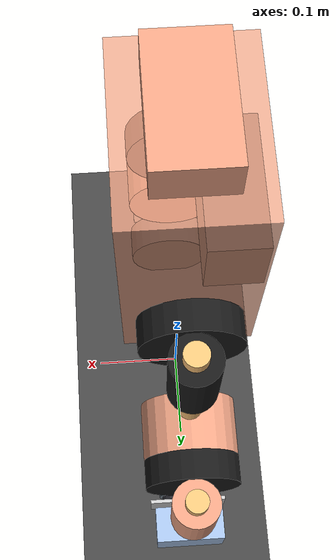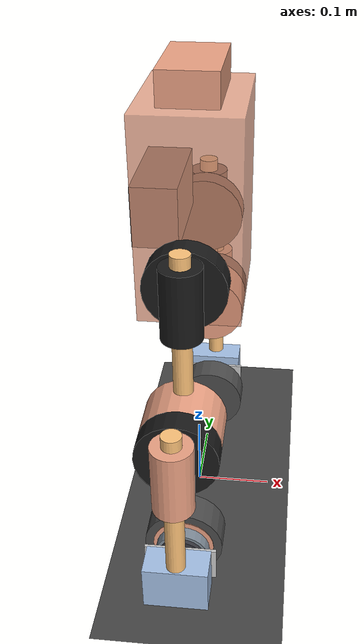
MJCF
<mujoco model="upkie">
  <compiler angle="radian"/>

  <option integrator = "RK4" timestep = "0.003"
          jacobian = "dense" cone = "elliptic" impratio = "1"
          solver = "Newton">
  </option>

  <statistic meansize="0.05"/>

  <asset>
    <texture type="skybox" builtin="gradient" rgb1="0.6 0.6 0.6" rgb2="0 0 0" width="512" height="512"/>
    <texture name="texplane" type="2d" builtin="checker" rgb1=".25 .25 .25" rgb2=".3 .3 .3" width="512" height="512" mark="cross" markrgb=".8 .8 .8"/>
    <material name="matplane" reflectance="0.3" texture="texplane" texrepeat="1 1" texuniform="true"/>
  </asset>

  <default>
    <!-- Collisions disabled for all geometries by default  -->
    <geom conaffinity="0" contype="0"/>
  </default>

  <worldbody>
    <geom name="floor" pos="0 0 0" size="10 10 0.1" type="plane" material="matplane" conaffinity="1" contype="1"/>
    <light directional="true" diffuse=".8 .8 .8" specular=".2 .2 .2" pos="5 0 0" dir="-1 0 0"/>
    <light directional="true" diffuse=".8 .8 .8" specular=".2 .2 .2" pos="0 0 5" dir="0 0 -1"/>

  <body name="torso" pos="0 0 0.55">
    <freejoint/>
    <geom size="0.0625 0.085 0.125" pos="0 0 -0.1" type="box" rgba="0.93 0.64 0.52 0.8"/>
    <geom size="0.065 0.037 0.0275" pos="-0.04 0 -0.1" quat="0.5 0.5 0.5 0.5" type="box" rgba="0.3 0.3 0.3 1"/>
    <geom size="0.06 0.035 0.02" pos="0 0 0.045" quat="0.707107 0 0 -0.707107" type="box" rgba="0.93 0.64 0.52 1"/>
    <geom size="0.05 0.015" pos="0 0.1 -0.164" quat="0.707107 -0.707107 0 0" type="cylinder" rgba="0.1 0.1 0.1 1"/>
    <geom size="0.05 0.015" pos="0 -0.1 -0.164" quat="0 0 0.707107 -0.707107" type="cylinder" rgba="0.1 0.1 0.1 1"/>

    <body name="left_hip_qdd100_rotor" pos="0 0.1142 -0.164" quat="0.707107 -0.707107 0 0">
      <inertial pos="-0.133716 -0.0493719 0.0140513" quat="-0.224415 0.673782 0.163439 0.684795" mass="0.69241" diaginertia="0.00464877 0.00428201 0.000631583"/>
      <joint name="left_hip" pos="0 0 0" axis="0 0 -1" range="-1.26 1.26" actuatorfrcrange="-16 16"/>
      <geom size="0.023 0.0025" pos="0 0 -0.0025" type="cylinder" rgba="0.1 0.1 0.1 1"/>
      <geom size="0.025 0.045" pos="0 0 0.025" quat="0.5 -0.5 0.5 0.5" type="cylinder" rgba="0.1 0.1 0.1 1"/>
      <geom size="0.012 0.13" pos="0 0.07 0.025" quat="0.707107 0.707107 0 0" type="cylinder" rgba="1 0.77 0.48 1"/>
      <geom size="0.05 0.03" pos="0 0.168 0.037" quat="0 0.707107 0.707107 0" type="cylinder" rgba="0.93 0.64 0.52 1"/>
      <geom size="0.05 0.015" pos="0 0.168 0.082" type="cylinder" rgba="0.1 0.1 0.1 1"/>

      <body name="left_knee_qdd100_rotor" pos="0 0.168 0.0962">
        <inertial pos="-0.0784906 -0.0275374 0.0164405" quat="0.27403 0.627221 -0.286553 0.670365" mass="0.3954" diaginertia="0.00607838 0.00419453 0.00206971"/>
        <joint name="left_knee" pos="0 0 0" axis="0 0 -1" range="-2.51 2.51" actuatorfrcrange="-16 16"/>
        <geom size="0.023 0.0025" pos="0 0 -0.0025" type="cylinder" rgba="0.1 0.1 0.1 1"/>
        <geom size="0.025 0.045" pos="0 0 0.025" quat="0.5 -0.5 0.5 0.5" type="cylinder" rgba="0.93 0.64 0.52 1"/>
        <geom size="0.012 0.13" pos="0 0.07 0.025" quat="0 0 0.707107 -0.707107" type="cylinder" rgba="1 0.77 0.48 1"/>
        <!-- venky edits -->
        <geom size="0.04 0.03 0.02" pos="0 0.173 0.0185" quat="0 0 0 -1" type="box" rgba="0.65 0.76 0.91 1"/>
        <geom size="0.045 0.023 0.002" pos="0 0.175 -0.0105" quat="0 0 0 -1" type="box" rgba="0.8 0.8 0.8 1"/>
        <geom size="0.03 0.009" pos="0 0.175 -0.022" quat="0 0 -1 0" type="cylinder" rgba="0.22 0.22 0.25 1"/>

        <body name="left_ankle_mj5208_rotor" pos="0 0.175 -0.012" quat="0 0 -1 0">
          <inertial pos="0 -0.0276426 0.0076375" quat="0.44994 0.545485 -0.545485 0.44994" mass="0.18455" diaginertia="0.000251776 0.000187248 0.000107836"/>
          <joint name="left_wheel" pos="0 0 0" axis="0 0 -1" actuatorfrcrange="-1.7 1.7"/>
          <geom size="0.034 0.008" pos="0 0 0.015" type="cylinder" rgba="0.5 0.55 0.6 1"/>
          <geom size="0.039 0.0125" pos="0 0 0.0376" type="cylinder" rgba="0.93 0.64 0.52 1"/>
          <geom size="0.05 0.02" pos="0 0 0.046" type="cylinder" rgba="0.3 0.3 0.3 1" conaffinity="1" contype="1"/>
        </body>
      </body>
    </body>

    <body name="right_hip_qdd100_rotor" pos="0 -0.1142 -0.164" quat="0 0 0.707107 -0.707107">
      <inertial pos="-0.133716 -0.0493719 0.0140513" quat="-0.224415 0.673782 0.163439 0.684795" mass="0.69241" diaginertia="0.00464877 0.00428201 0.000631583"/>
      <joint name="right_hip" pos="0 0 0" axis="0 0 -1" range="-1.26 1.26" actuatorfrcrange="-16 16"/>
      <geom size="0.023 0.0025" pos="0 0 -0.0025" type="cylinder" rgba="0.1 0.1 0.1 1"/>
      <geom size="0.025 0.045" pos="0 0 0.025" quat="0.5 -0.5 0.5 0.5" type="cylinder" rgba="0.1 0.1 0.1 1"/>
      <geom size="0.012 0.13" pos="0 0.07 0.025" quat="0.707107 0.707107 0 0" type="cylinder" rgba="1 0.77 0.48 1"/>
      <geom size="0.05 0.03" pos="0 0.168 0.037" quat="0 0.707107 0.707107 0" type="cylinder" rgba="0.93 0.64 0.52 1"/>
      <geom size="0.05 0.015" pos="0 0.168 0.082" type="cylinder" rgba="0.1 0.1 0.1 1"/>

      <body name="right_knee_qdd100_rotor" pos="0 0.168 0.0962">
        <inertial pos="-0.0784906 -0.0275374 0.0164456" quat="0.273937 0.627211 -0.286636 0.670376" mass="0.3954" diaginertia="0.00607839 0.00419418 0.00206942"/>
        <joint name="right_knee" pos="0 0 0" axis="0 0 -1" range="-2.51 2.51" actuatorfrcrange="-16 16"/>
        <geom size="0.023 0.0025" pos="0 0 -0.0025" type="cylinder" rgba="0.1 0.1 0.1 1"/>
        <geom size="0.025 0.045" pos="0 0 0.025" quat="0.5 -0.5 0.5 0.5" type="cylinder" rgba="0.93 0.64 0.52 1"/>
        <geom size="0.012 0.13" pos="0 0.07 0.025" quat="0 0 0.707107 -0.707107" type="cylinder" rgba="1 0.77 0.48 1"/>
        <!-- venky edits -->
        <geom size="0.04 0.03 0.02" pos="0 0.173 0.0185" quat="0 0 0 -1" type="box" rgba="0.65 0.76 0.91 1"/>
        <geom size="0.045 0.023 0.002" pos="0 0.175 -0.0105" quat="0 0 0 -1" type="box" rgba="0.8 0.8 0.8 1"/>
        <geom size="0.03 0.009" pos="0 0.175 -0.022" quat="0 0 -1 0" type="cylinder" rgba="0.22 0.22 0.25 1"/>

        <body name="right_ankle_mj5208_rotor" pos="0 0.175 -0.012" quat="0 0 -1 0">
          <inertial pos="0 -0.0276426 0.0076375" quat="0.44994 0.545485 -0.545485 0.44994" mass="0.18455" diaginertia="0.000251776 0.000187248 0.000107836"/>
          <joint name="right_wheel" pos="0 0 0" axis="0 0 -1" actuatorfrcrange="-1.7 1.7"/>
          <geom size="0.034 0.008" pos="0 0 0.015" type="cylinder" rgba="0.5 0.55 0.6 1"/>
          <geom size="0.039 0.0125" pos="0 0 0.0376" type="cylinder" rgba="0.93 0.64 0.52 1"/>
          <geom size="0.05 0.02" pos="0 0 0.046" type="cylinder" rgba="0.3 0.3 0.3 1" conaffinity="1" contype="1"/>
        </body>
      </body>
    </body>
  </body>
  </worldbody>

  <actuator>
    <motor name="left_hip_motor" joint="left_hip"/>
    <motor name="right_hip_motor" joint="right_hip"/>
    <motor name="left_knee_motor" joint="left_knee"/>
    <motor name="right_knee_motor" joint="right_knee"/>
    <motor name="left_wheel_motor" joint="left_wheel"/>
    <motor name="right_wheel_motor" joint="right_wheel"/>
  </actuator>

  <keyframe>
    <key name="nominal"
    time="0"
    qpos="0 0 0.55 1 0 0 0 0 0 0 0 0 0"
    qvel="0 0 0 0 0 0 0 0 0 0 0 0"
    ctrl="0 0 0 0 0 0"/>
  </keyframe>

</mujoco>
